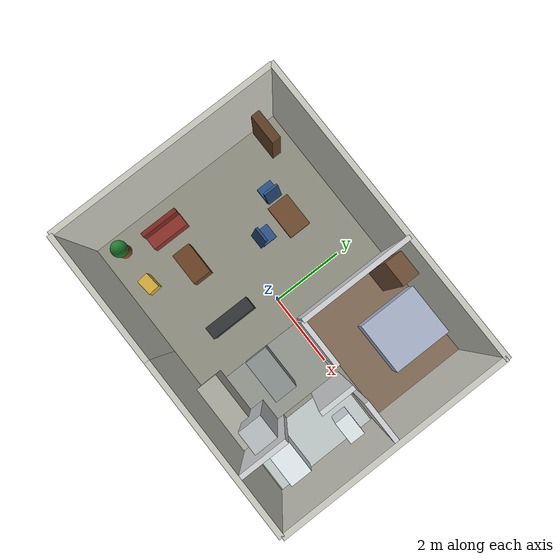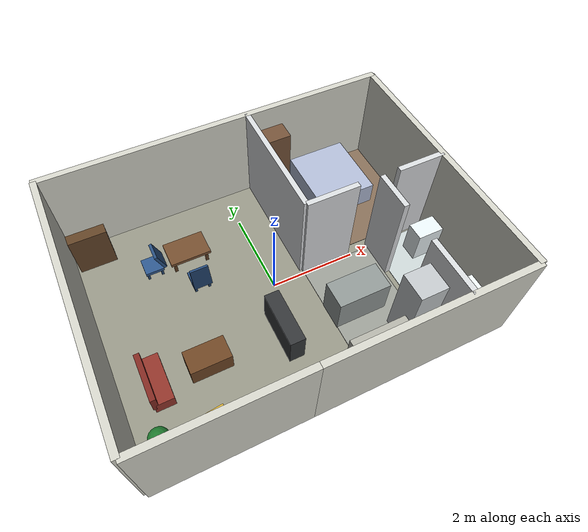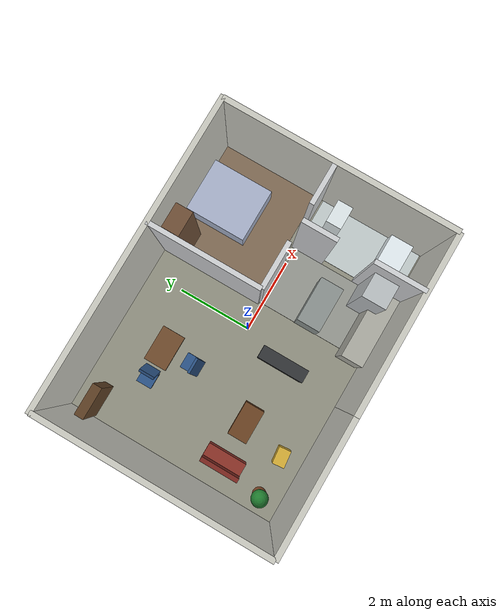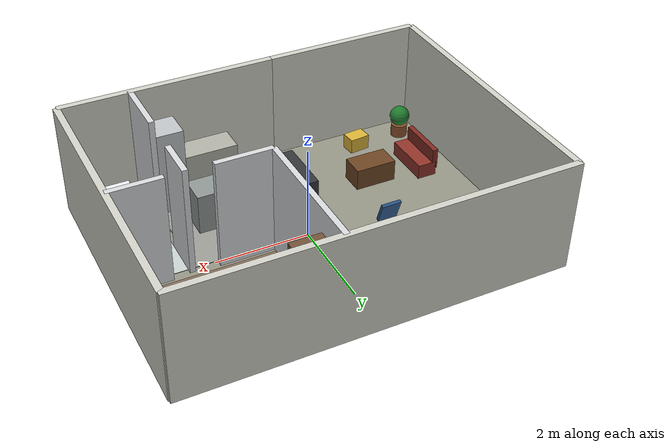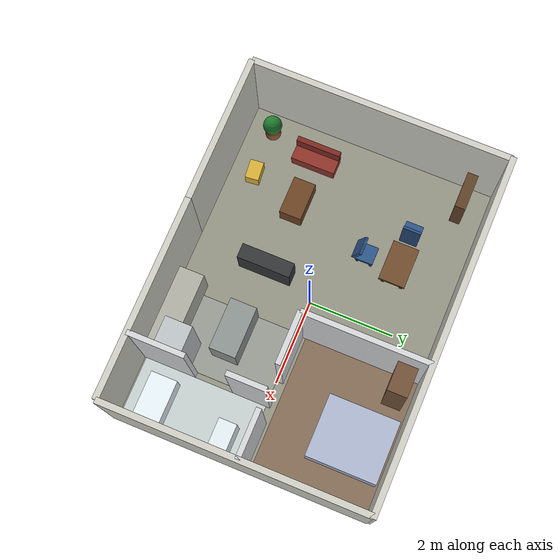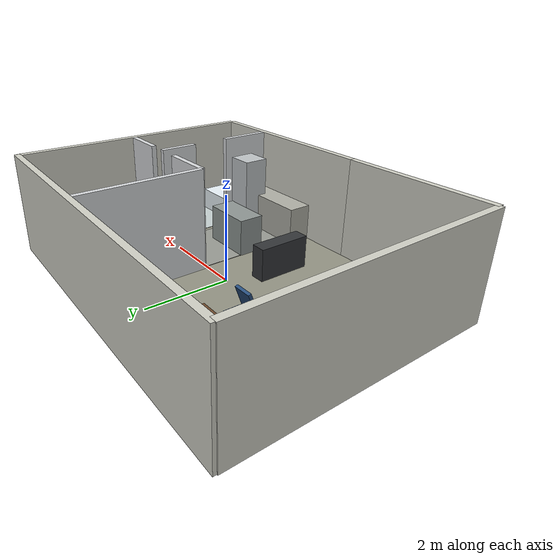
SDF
<?xml version='1.0' encoding='utf-8'?>
<sdf version="1.7">
  <world name="apartment_floorplan">
    <plugin filename="gz-sim-physics-system" name="gz::sim::systems::Physics" />
    <plugin filename="gz-sim-user-commands-system" name="gz::sim::systems::UserCommands" />
    <plugin filename="gz-sim-scene-broadcaster-system" name="gz::sim::systems::SceneBroadcaster" />
    <plugin filename="gz-sim-sensors-system" name="gz::sim::systems::Sensors">
      <render_engine>ogre2</render_engine>
    </plugin>
    <light name="ceiling_light" type="point">
      <cast_shadows>true</cast_shadows>
      <pose>0 0 2.8 0 0 0</pose>
      <diffuse>0.9 0.86 0.78 1</diffuse>
      <specular>0.2 0.2 0.2 1</specular>
      <attenuation>
        <range>8</range>
        <constant>0.8</constant>
        <linear>0.05</linear>
        <quadratic>0.01</quadratic>
      </attenuation>
    </light>
    <model name="floor">
      <static>true</static>
      <link name="link">
        <collision name="collision">
          <geometry>
            <box>
              <size>8 6 0.06</size>
            </box>
          </geometry>
        </collision>
        <visual name="visual">
          <geometry>
            <box>
              <size>8 6 0.06</size>
            </box>
          </geometry>
          <material>
            <ambient>0.48 0.48 0.43 1</ambient>
            <diffuse>0.58 0.58 0.52 1</diffuse>
          </material>
        </visual>
      </link>
    </model>
    <model name="north_wall">
      <static>true</static>
      <pose>0 3 1.2 0 0 0</pose>
      <link name="link">
        <collision name="collision">
          <geometry>
            <box>
              <size>8.1 0.14 2.4</size>
            </box>
          </geometry>
        </collision>
        <visual name="visual">
          <geometry>
            <box>
              <size>8.1 0.14 2.4</size>
            </box>
          </geometry>
          <material>
            <ambient>0.72 0.72 0.68 1</ambient>
            <diffuse>0.82 0.82 0.78 1</diffuse>
          </material>
        </visual>
      </link>
    </model>
    <model name="south_wall_left">
      <static>true</static>
      <pose>-2.3 -3 1.2 0 0 0</pose>
      <link name="link">
        <collision name="collision">
          <geometry>
            <box>
              <size>3.4 0.14 2.4</size>
            </box>
          </geometry>
        </collision>
        <visual name="visual">
          <geometry>
            <box>
              <size>3.4 0.14 2.4</size>
            </box>
          </geometry>
          <material>
            <ambient>0.72 0.72 0.68 1</ambient>
            <diffuse>0.82 0.82 0.78 1</diffuse>
          </material>
        </visual>
      </link>
    </model>
    <model name="south_wall_right">
      <static>true</static>
      <pose>1.7 -3 1.2 0 0 0</pose>
      <link name="link">
        <collision name="collision">
          <geometry>
            <box>
              <size>4.6 0.14 2.4</size>
            </box>
          </geometry>
        </collision>
        <visual name="visual">
          <geometry>
            <box>
              <size>4.6 0.14 2.4</size>
            </box>
          </geometry>
          <material>
            <ambient>0.72 0.72 0.68 1</ambient>
            <diffuse>0.82 0.82 0.78 1</diffuse>
          </material>
        </visual>
      </link>
    </model>
    <model name="west_wall">
      <static>true</static>
      <pose>-4 0 1.2 0 0 0</pose>
      <link name="link">
        <collision name="collision">
          <geometry>
            <box>
              <size>0.14 6 2.4</size>
            </box>
          </geometry>
        </collision>
        <visual name="visual">
          <geometry>
            <box>
              <size>0.14 6 2.4</size>
            </box>
          </geometry>
          <material>
            <ambient>0.72 0.72 0.68 1</ambient>
            <diffuse>0.82 0.82 0.78 1</diffuse>
          </material>
        </visual>
      </link>
    </model>
    <model name="east_wall">
      <static>true</static>
      <pose>4 0 1.2 0 0 0</pose>
      <link name="link">
        <collision name="collision">
          <geometry>
            <box>
              <size>0.14 6 2.4</size>
            </box>
          </geometry>
        </collision>
        <visual name="visual">
          <geometry>
            <box>
              <size>0.14 6 2.4</size>
            </box>
          </geometry>
          <material>
            <ambient>0.72 0.72 0.68 1</ambient>
            <diffuse>0.82 0.82 0.78 1</diffuse>
          </material>
        </visual>
      </link>
    </model>
    <model name="table">
      <static>true</static>
      <pose>-1.5 1.55 0 0 0 0</pose>
      <link name="top">
        <pose>0 0 0.38 0 0 0</pose>
        <collision name="collision">
          <geometry>
            <box>
              <size>0.95 0.62 0.08</size>
            </box>
          </geometry>
        </collision>
        <visual name="visual">
          <geometry>
            <box>
              <size>0.95 0.62 0.08</size>
            </box>
          </geometry>
          <material>
            <ambient>0.35 0.22 0.12 1</ambient>
            <diffuse>0.45 0.30 0.18 1</diffuse>
          </material>
        </visual>
      </link>
      <link name="leg_1">
        <pose>0.38 0.22 0.19 0 0 0</pose>
        <collision name="collision">
          <geometry>
            <box>
              <size>0.07 0.07 0.36</size>
            </box>
          </geometry>
        </collision>
        <visual name="visual">
          <geometry>
            <box>
              <size>0.07 0.07 0.36</size>
            </box>
          </geometry>
          <material>
            <ambient>0.25 0.16 0.08 1</ambient>
            <diffuse>0.36 0.23 0.12 1</diffuse>
          </material>
        </visual>
      </link>
      <link name="leg_2">
        <pose>-0.38 0.22 0.19 0 0 0</pose>
        <collision name="collision">
          <geometry>
            <box>
              <size>0.07 0.07 0.36</size>
            </box>
          </geometry>
        </collision>
        <visual name="visual">
          <geometry>
            <box>
              <size>0.07 0.07 0.36</size>
            </box>
          </geometry>
          <material>
            <ambient>0.25 0.16 0.08 1</ambient>
            <diffuse>0.36 0.23 0.12 1</diffuse>
          </material>
        </visual>
      </link>
      <link name="leg_3">
        <pose>0.38 -0.22 0.19 0 0 0</pose>
        <collision name="collision">
          <geometry>
            <box>
              <size>0.07 0.07 0.36</size>
            </box>
          </geometry>
        </collision>
        <visual name="visual">
          <geometry>
            <box>
              <size>0.07 0.07 0.36</size>
            </box>
          </geometry>
          <material>
            <ambient>0.25 0.16 0.08 1</ambient>
            <diffuse>0.36 0.23 0.12 1</diffuse>
          </material>
        </visual>
      </link>
      <link name="leg_4">
        <pose>-0.38 -0.22 0.19 0 0 0</pose>
        <collision name="collision">
          <geometry>
            <box>
              <size>0.07 0.07 0.36</size>
            </box>
          </geometry>
        </collision>
        <visual name="visual">
          <geometry>
            <box>
              <size>0.07 0.07 0.36</size>
            </box>
          </geometry>
          <material>
            <ambient>0.25 0.16 0.08 1</ambient>
            <diffuse>0.36 0.23 0.12 1</diffuse>
          </material>
        </visual>
      </link>
    </model>
    <model name="chair_front">
      <static>true</static>
      <pose>-1.5 0.78 0 0 0 3.14159</pose>
      <link name="seat">
        <pose>0 0 0.25 0 0 0</pose>
        <collision name="collision">
          <geometry>
            <box>
              <size>0.42 0.42 0.08</size>
            </box>
          </geometry>
        </collision>
        <visual name="visual">
          <geometry>
            <box>
              <size>0.42 0.42 0.08</size>
            </box>
          </geometry>
          <material>
            <ambient>0.12 0.25 0.42 1</ambient>
            <diffuse>0.18 0.34 0.55 1</diffuse>
          </material>
        </visual>
      </link>
      <link name="back">
        <pose>0 0.18 0.52 0.35 0 0</pose>
        <collision name="collision">
          <geometry>
            <box>
              <size>0.42 0.07 0.48</size>
            </box>
          </geometry>
        </collision>
        <visual name="visual">
          <geometry>
            <box>
              <size>0.42 0.07 0.48</size>
            </box>
          </geometry>
          <material>
            <ambient>0.10 0.22 0.38 1</ambient>
            <diffuse>0.16 0.31 0.50 1</diffuse>
          </material>
        </visual>
      </link>
      <link name="front_left_leg">
        <pose>0.16 -0.16 0.115 0 0 0</pose>
        <collision name="collision">
          <geometry>
            <box>
              <size>0.055 0.055 0.23</size>
            </box>
          </geometry>
        </collision>
        <visual name="visual">
          <geometry>
            <box>
              <size>0.055 0.055 0.23</size>
            </box>
          </geometry>
          <material>
            <ambient>0.09 0.18 0.30 1</ambient>
            <diffuse>0.14 0.27 0.43 1</diffuse>
          </material>
        </visual>
      </link>
      <link name="front_right_leg">
        <pose>-0.16 -0.16 0.115 0 0 0</pose>
        <collision name="collision">
          <geometry>
            <box>
              <size>0.055 0.055 0.23</size>
            </box>
          </geometry>
        </collision>
        <visual name="visual">
          <geometry>
            <box>
              <size>0.055 0.055 0.23</size>
            </box>
          </geometry>
          <material>
            <ambient>0.09 0.18 0.30 1</ambient>
            <diffuse>0.14 0.27 0.43 1</diffuse>
          </material>
        </visual>
      </link>
      <link name="rear_left_leg">
        <pose>0.16 0.16 0.115 0 0 0</pose>
        <collision name="collision">
          <geometry>
            <box>
              <size>0.055 0.055 0.23</size>
            </box>
          </geometry>
        </collision>
        <visual name="visual">
          <geometry>
            <box>
              <size>0.055 0.055 0.23</size>
            </box>
          </geometry>
          <material>
            <ambient>0.09 0.18 0.30 1</ambient>
            <diffuse>0.14 0.27 0.43 1</diffuse>
          </material>
        </visual>
      </link>
      <link name="rear_right_leg">
        <pose>-0.16 0.16 0.115 0 0 0</pose>
        <collision name="collision">
          <geometry>
            <box>
              <size>0.055 0.055 0.23</size>
            </box>
          </geometry>
        </collision>
        <visual name="visual">
          <geometry>
            <box>
              <size>0.055 0.055 0.23</size>
            </box>
          </geometry>
          <material>
            <ambient>0.09 0.18 0.30 1</ambient>
            <diffuse>0.14 0.27 0.43 1</diffuse>
          </material>
        </visual>
      </link>
    </model>
    <model name="chair_right">
      <static>true</static>
      <pose>-2.35 1.55 0 0 0 -1.5708</pose>
      <link name="seat">
        <pose>0 0 0.25 0 0 0</pose>
        <collision name="collision">
          <geometry>
            <box>
              <size>0.42 0.42 0.08</size>
            </box>
          </geometry>
        </collision>
        <visual name="visual">
          <geometry>
            <box>
              <size>0.42 0.42 0.08</size>
            </box>
          </geometry>
          <material>
            <ambient>0.12 0.25 0.42 1</ambient>
            <diffuse>0.18 0.34 0.55 1</diffuse>
          </material>
        </visual>
      </link>
      <link name="back">
        <pose>0 0.18 0.52 0.35 0 0</pose>
        <collision name="collision">
          <geometry>
            <box>
              <size>0.42 0.07 0.48</size>
            </box>
          </geometry>
        </collision>
        <visual name="visual">
          <geometry>
            <box>
              <size>0.42 0.07 0.48</size>
            </box>
          </geometry>
          <material>
            <ambient>0.10 0.22 0.38 1</ambient>
            <diffuse>0.16 0.31 0.50 1</diffuse>
          </material>
        </visual>
      </link>
      <link name="front_left_leg">
        <pose>0.16 -0.16 0.115 0 0 0</pose>
        <collision name="collision">
          <geometry>
            <box>
              <size>0.055 0.055 0.23</size>
            </box>
          </geometry>
        </collision>
        <visual name="visual">
          <geometry>
            <box>
              <size>0.055 0.055 0.23</size>
            </box>
          </geometry>
          <material>
            <ambient>0.09 0.18 0.30 1</ambient>
            <diffuse>0.14 0.27 0.43 1</diffuse>
          </material>
        </visual>
      </link>
      <link name="front_right_leg">
        <pose>-0.16 -0.16 0.115 0 0 0</pose>
        <collision name="collision">
          <geometry>
            <box>
              <size>0.055 0.055 0.23</size>
            </box>
          </geometry>
        </collision>
        <visual name="visual">
          <geometry>
            <box>
              <size>0.055 0.055 0.23</size>
            </box>
          </geometry>
          <material>
            <ambient>0.09 0.18 0.30 1</ambient>
            <diffuse>0.14 0.27 0.43 1</diffuse>
          </material>
        </visual>
      </link>
      <link name="rear_left_leg">
        <pose>0.16 0.16 0.115 0 0 0</pose>
        <collision name="collision">
          <geometry>
            <box>
              <size>0.055 0.055 0.23</size>
            </box>
          </geometry>
        </collision>
        <visual name="visual">
          <geometry>
            <box>
              <size>0.055 0.055 0.23</size>
            </box>
          </geometry>
          <material>
            <ambient>0.09 0.18 0.30 1</ambient>
            <diffuse>0.14 0.27 0.43 1</diffuse>
          </material>
        </visual>
      </link>
      <link name="rear_right_leg">
        <pose>-0.16 0.16 0.115 0 0 0</pose>
        <collision name="collision">
          <geometry>
            <box>
              <size>0.055 0.055 0.23</size>
            </box>
          </geometry>
        </collision>
        <visual name="visual">
          <geometry>
            <box>
              <size>0.055 0.055 0.23</size>
            </box>
          </geometry>
          <material>
            <ambient>0.09 0.18 0.30 1</ambient>
            <diffuse>0.14 0.27 0.43 1</diffuse>
          </material>
        </visual>
      </link>
    </model>
    <model name="bookcase">
      <static>true</static>
      <pose>-3.45 2.35 0.55 0 0 0</pose>
      <link name="link">
        <collision name="collision">
          <geometry>
            <box>
              <size>0.85 0.25 1.1</size>
            </box>
          </geometry>
        </collision>
        <visual name="visual">
          <geometry>
            <box>
              <size>0.85 0.25 1.1</size>
            </box>
          </geometry>
          <material>
            <ambient>0.26 0.18 0.10 1</ambient>
            <diffuse>0.38 0.26 0.15 1</diffuse>
          </material>
        </visual>
      </link>
    </model>
    <model name="sofa">
      <static>true</static>
      <pose>-3.15 -1.15 0.23 0 0 1.5708</pose>
      <link name="base">
        <collision name="collision">
          <geometry>
            <box>
              <size>1.05 0.42 0.32</size>
            </box>
          </geometry>
        </collision>
        <visual name="visual">
          <geometry>
            <box>
              <size>1.05 0.42 0.32</size>
            </box>
          </geometry>
          <material>
            <ambient>0.42 0.13 0.10 1</ambient>
            <diffuse>0.56 0.20 0.16 1</diffuse>
          </material>
        </visual>
      </link>
      <link name="back">
        <pose>0 0.18 0.23 0 0 0</pose>
        <collision name="collision">
          <geometry>
            <box>
              <size>1.05 0.12 0.46</size>
            </box>
          </geometry>
        </collision>
        <visual name="visual">
          <geometry>
            <box>
              <size>1.05 0.12 0.46</size>
            </box>
          </geometry>
          <material>
            <ambient>0.36 0.10 0.08 1</ambient>
            <diffuse>0.50 0.16 0.13 1</diffuse>
          </material>
        </visual>
      </link>
    </model>
    <model name="plant_pot">
      <static>true</static>
      <pose>-3.45 -2.35 0.22 0 0 0</pose>
      <link name="pot">
        <collision name="collision">
          <geometry>
            <cylinder>
              <radius>0.18</radius>
              <length>0.28</length>
            </cylinder>
          </geometry>
        </collision>
        <visual name="visual">
          <geometry>
            <cylinder>
              <radius>0.18</radius>
              <length>0.28</length>
            </cylinder>
          </geometry>
          <material>
            <ambient>0.42 0.22 0.12 1</ambient>
            <diffuse>0.55 0.32 0.18 1</diffuse>
          </material>
        </visual>
      </link>
      <link name="leaves">
        <pose>0 0 0.34 0 0 0</pose>
        <collision name="collision">
          <geometry>
            <sphere>
              <radius>0.22</radius>
            </sphere>
          </geometry>
        </collision>
        <visual name="visual">
          <geometry>
            <sphere>
              <radius>0.22</radius>
            </sphere>
          </geometry>
          <material>
            <ambient>0.08 0.32 0.12 1</ambient>
            <diffuse>0.12 0.48 0.18 1</diffuse>
          </material>
        </visual>
      </link>
    </model>
    <model name="storage_box">
      <static>true</static>
      <pose>-2.35 -2.35 0.18 0 0 0.1</pose>
      <link name="link">
        <collision name="collision">
          <geometry>
            <box>
              <size>0.45 0.32 0.36</size>
            </box>
          </geometry>
        </collision>
        <visual name="visual">
          <geometry>
            <box>
              <size>0.45 0.32 0.36</size>
            </box>
          </geometry>
          <material>
            <ambient>0.70 0.58 0.16 1</ambient>
            <diffuse>0.86 0.70 0.22 1</diffuse>
          </material>
        </visual>
      </link>
    </model>
    <model name="bedroom_wall">
      <static>true</static>
      <pose>0.75 1.55 1.2 0 0 0</pose>
      <link name="link">
        <collision name="collision">
          <geometry>
            <box>
              <size>0.12 2.9 2.4</size>
            </box>
          </geometry>
        </collision>
        <visual name="visual">
          <geometry>
            <box>
              <size>0.12 2.9 2.4</size>
            </box>
          </geometry>
          <material>
            <ambient>0.70 0.71 0.72 1</ambient>
            <diffuse>0.84 0.85 0.86 1</diffuse>
          </material>
        </visual>
      </link>
    </model>
    <model name="bedroom_wall_lower_left">
      <static>true</static>
      <pose>1.35 0.10 1.2 0 0 0</pose>
      <link name="link">
        <collision name="collision">
          <geometry>
            <box>
              <size>1.2 0.12 2.4</size>
            </box>
          </geometry>
        </collision>
        <visual name="visual">
          <geometry>
            <box>
              <size>1.2 0.12 2.4</size>
            </box>
          </geometry>
          <material>
            <ambient>0.70 0.71 0.72 1</ambient>
            <diffuse>0.84 0.85 0.86 1</diffuse>
          </material>
        </visual>
      </link>
    </model>
    <model name="bedroom_wall_lower_right">
      <static>true</static>
      <pose>3.45 0.10 1.2 0 0 0</pose>
      <link name="link">
        <collision name="collision">
          <geometry>
            <box>
              <size>1.1 0.12 2.4</size>
            </box>
          </geometry>
        </collision>
        <visual name="visual">
          <geometry>
            <box>
              <size>1.1 0.12 2.4</size>
            </box>
          </geometry>
          <material>
            <ambient>0.70 0.71 0.72 1</ambient>
            <diffuse>0.84 0.85 0.86 1</diffuse>
          </material>
        </visual>
      </link>
    </model>
    <model name="bathroom_wall_upper">
      <static>true</static>
      <pose>2.50 -0.35 1.2 0 0 0</pose>
      <link name="link">
        <collision name="collision">
          <geometry>
            <box>
              <size>0.12 0.9 2.4</size>
            </box>
          </geometry>
        </collision>
        <visual name="visual">
          <geometry>
            <box>
              <size>0.12 0.9 2.4</size>
            </box>
          </geometry>
          <material>
            <ambient>0.70 0.71 0.72 1</ambient>
            <diffuse>0.84 0.85 0.86 1</diffuse>
          </material>
        </visual>
      </link>
    </model>
    <model name="bathroom_wall_lower">
      <static>true</static>
      <pose>2.50 -2.35 1.2 0 0 0</pose>
      <link name="link">
        <collision name="collision">
          <geometry>
            <box>
              <size>0.12 1.3 2.4</size>
            </box>
          </geometry>
        </collision>
        <visual name="visual">
          <geometry>
            <box>
              <size>0.12 1.3 2.4</size>
            </box>
          </geometry>
          <material>
            <ambient>0.70 0.71 0.72 1</ambient>
            <diffuse>0.84 0.85 0.86 1</diffuse>
          </material>
        </visual>
      </link>
    </model>
    <model name="bedroom_floor">
      <static>true</static>
      <pose>2.35 1.60 0.035 0 0 0</pose>
      <link name="link">
        <visual name="visual">
          <geometry>
            <box>
              <size>3.18 2.75 0.015</size>
            </box>
          </geometry>
          <material>
            <ambient>0.52 0.43 0.34 1</ambient>
            <diffuse>0.52 0.43 0.34 1</diffuse>
          </material>
        </visual>
      </link>
    </model>
    <model name="bathroom_floor">
      <static>true</static>
      <pose>3.25 -1.45 0.035 0 0 0</pose>
      <link name="link">
        <visual name="visual">
          <geometry>
            <box>
              <size>1.38 2.90 0.015</size>
            </box>
          </geometry>
          <material>
            <ambient>0.78 0.82 0.82 1</ambient>
            <diffuse>0.78 0.82 0.82 1</diffuse>
          </material>
        </visual>
      </link>
    </model>
    <model name="kitchen_floor">
      <static>true</static>
      <pose>1.60 -1.45 0.035 0 0 0</pose>
      <link name="link">
        <visual name="visual">
          <geometry>
            <box>
              <size>1.68 2.90 0.015</size>
            </box>
          </geometry>
          <material>
            <ambient>0.60 0.61 0.58 1</ambient>
            <diffuse>0.60 0.61 0.58 1</diffuse>
          </material>
        </visual>
      </link>
    </model>
    <model name="bed">
      <static>true</static>
      <pose>2.55 2.05 0.30 0 0 0</pose>
      <link name="link">
        <collision name="collision">
          <geometry>
            <box>
              <size>1.45 1.65 0.60</size>
            </box>
          </geometry>
        </collision>
        <visual name="visual">
          <geometry>
            <box>
              <size>1.45 1.65 0.60</size>
            </box>
          </geometry>
          <material>
            <ambient>0.68 0.72 0.82 1</ambient>
            <diffuse>0.68 0.72 0.82 1</diffuse>
          </material>
        </visual>
      </link>
    </model>
    <model name="wardrobe">
      <static>true</static>
      <pose>1.20 2.55 1.00 0 0 0</pose>
      <link name="link">
        <collision name="collision">
          <geometry>
            <box>
              <size>0.65 0.45 2.00</size>
            </box>
          </geometry>
        </collision>
        <visual name="visual">
          <geometry>
            <box>
              <size>0.65 0.45 2.00</size>
            </box>
          </geometry>
          <material>
            <ambient>0.45 0.32 0.22 1</ambient>
            <diffuse>0.45 0.32 0.22 1</diffuse>
          </material>
        </visual>
      </link>
    </model>
    <model name="kitchen_counter">
      <static>true</static>
      <pose>1.45 -2.58 0.48 0 0 0</pose>
      <link name="link">
        <collision name="collision">
          <geometry>
            <box>
              <size>1.85 0.58 0.96</size>
            </box>
          </geometry>
        </collision>
        <visual name="visual">
          <geometry>
            <box>
              <size>1.85 0.58 0.96</size>
            </box>
          </geometry>
          <material>
            <ambient>0.69 0.69 0.65 1</ambient>
            <diffuse>0.69 0.69 0.65 1</diffuse>
          </material>
        </visual>
      </link>
    </model>
    <model name="kitchen_island">
      <static>true</static>
      <pose>1.35 -1.25 0.46 0 0 0</pose>
      <link name="link">
        <collision name="collision">
          <geometry>
            <box>
              <size>1.20 0.62 0.92</size>
            </box>
          </geometry>
        </collision>
        <visual name="visual">
          <geometry>
            <box>
              <size>1.20 0.62 0.92</size>
            </box>
          </geometry>
          <material>
            <ambient>0.56 0.59 0.58 1</ambient>
            <diffuse>0.56 0.59 0.58 1</diffuse>
          </material>
        </visual>
      </link>
    </model>
    <model name="refrigerator">
      <static>true</static>
      <pose>2.12 -2.20 0.95 0 0 0</pose>
      <link name="link">
        <collision name="collision">
          <geometry>
            <box>
              <size>0.62 0.62 1.90</size>
            </box>
          </geometry>
        </collision>
        <visual name="visual">
          <geometry>
            <box>
              <size>0.62 0.62 1.90</size>
            </box>
          </geometry>
          <material>
            <ambient>0.75 0.77 0.78 1</ambient>
            <diffuse>0.75 0.77 0.78 1</diffuse>
          </material>
        </visual>
      </link>
    </model>
    <model name="bathtub">
      <static>true</static>
      <pose>3.35 -2.25 0.30 0 0 0</pose>
      <link name="link">
        <collision name="collision">
          <geometry>
            <box>
              <size>1.00 0.62 0.60</size>
            </box>
          </geometry>
        </collision>
        <visual name="visual">
          <geometry>
            <box>
              <size>1.00 0.62 0.60</size>
            </box>
          </geometry>
          <material>
            <ambient>0.92 0.96 0.98 1</ambient>
            <diffuse>0.92 0.96 0.98 1</diffuse>
          </material>
        </visual>
      </link>
    </model>
    <model name="bathroom_sink">
      <static>true</static>
      <pose>3.55 -0.55 0.42 0 0 0</pose>
      <link name="link">
        <collision name="collision">
          <geometry>
            <box>
              <size>0.62 0.42 0.84</size>
            </box>
          </geometry>
        </collision>
        <visual name="visual">
          <geometry>
            <box>
              <size>0.62 0.42 0.84</size>
            </box>
          </geometry>
          <material>
            <ambient>0.90 0.94 0.95 1</ambient>
            <diffuse>0.90 0.94 0.95 1</diffuse>
          </material>
        </visual>
      </link>
    </model>
    <model name="coffee_table">
      <static>true</static>
      <pose>-2.05 -1.15 0.25 0 0 0</pose>
      <link name="link">
        <collision name="collision">
          <geometry>
            <box>
              <size>0.90 0.52 0.50</size>
            </box>
          </geometry>
        </collision>
        <visual name="visual">
          <geometry>
            <box>
              <size>0.90 0.52 0.50</size>
            </box>
          </geometry>
          <material>
            <ambient>0.43 0.27 0.14 1</ambient>
            <diffuse>0.43 0.27 0.14 1</diffuse>
          </material>
        </visual>
      </link>
    </model>
    <model name="television_console">
      <static>true</static>
      <pose>-0.35 -1.20 0.40 0 0 1.5708</pose>
      <link name="link">
        <collision name="collision">
          <geometry>
            <box>
              <size>1.25 0.34 0.80</size>
            </box>
          </geometry>
        </collision>
        <visual name="visual">
          <geometry>
            <box>
              <size>1.25 0.34 0.80</size>
            </box>
          </geometry>
          <material>
            <ambient>0.20 0.21 0.22 1</ambient>
            <diffuse>0.20 0.21 0.22 1</diffuse>
          </material>
        </visual>
      </link>
    </model>
  </world>
</sdf>
